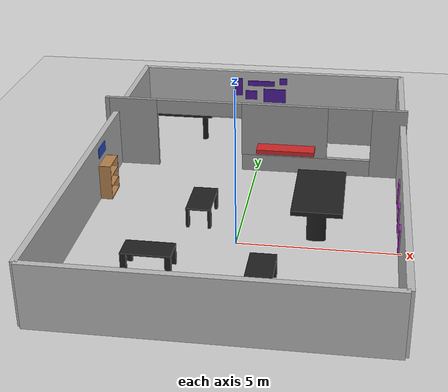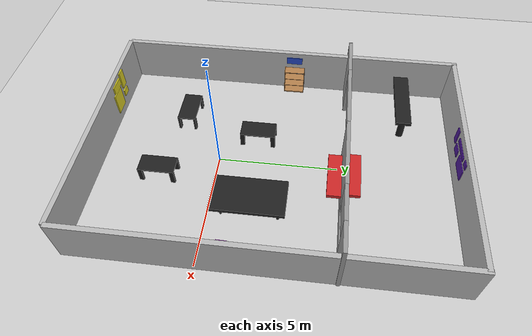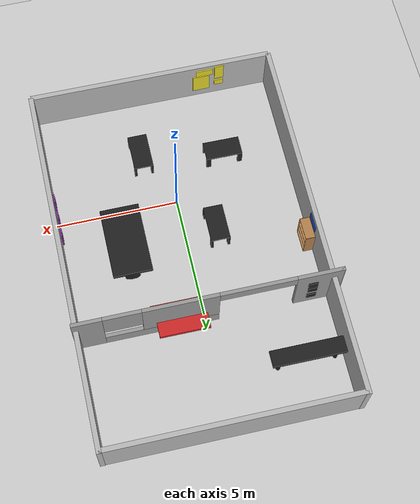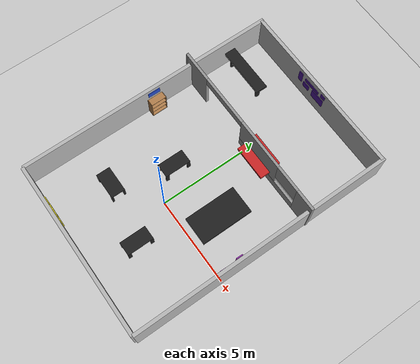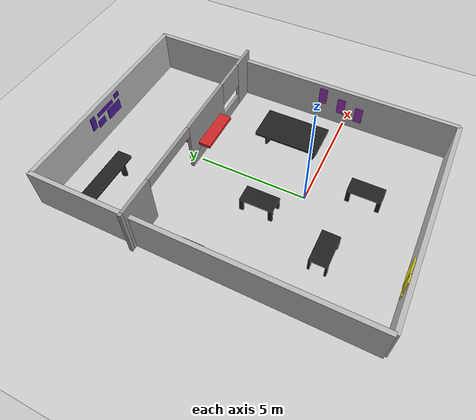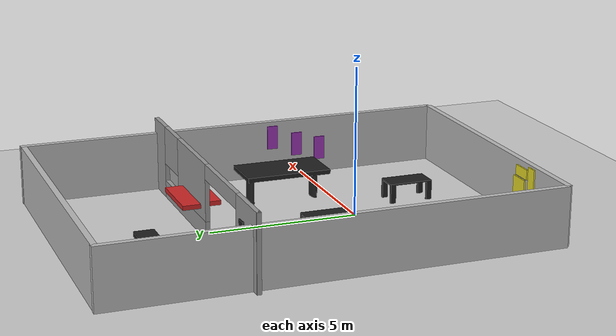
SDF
<sdf version="1.6">
 <world name="default">
  <physics name="default_physics" default="0" type="ode">
   <ode>
    <solver>
     <type>quick</type>
     <iters>20</iters>
     <sor>1</sor>
     <use_dynamic_moi_rescaling>0</use_dynamic_moi_rescaling>
    </solver>
    <constraints>
     <cfm>0</cfm>
     <erp>0.2</erp>
     <contact_max_correcting_vel>100</contact_max_correcting_vel>
     <contact_surface_layer>0</contact_surface_layer>
    </constraints>
   </ode>
   <real_time_update_rate>1000</real_time_update_rate>
   <max_step_size>0.001</max_step_size>
   <real_time_factor>1</real_time_factor>
  </physics>
  <light name="sun" type="directional">
   <pose>0 0 10 0 -0 0</pose>
   <diffuse>0.8 0.8 0.8 1</diffuse>
   <specular>0.1 0.1 0.1 1</specular>
   <attenuation>
    <range>1000</range>
    <constant>0.9</constant>
    <linear>0.01</linear>
    <quadratic>0.001</quadratic>
   </attenuation>
   <direction>-0.5 0.5 -1</direction>
  </light>
  <model name="ground_plane">
   <static>1</static>
   <link name="link">
    <collision name="collision">
     <geometry><plane><normal>0 0 1</normal><size>100 100</size></plane></geometry>
     <surface><friction><ode><mu>100</mu><mu2>50</mu2></ode></friction></surface>
    </collision>
    <visual name="visual">
     <cast_shadows>0</cast_shadows>
     <geometry><plane><normal>0 0 1</normal><size>100 100</size></plane></geometry>
     <material>
      <script><uri>file://media/materials/scripts/gazebo.material</uri><name>Gazebo/Grey</name></script>
     </material>
    </visual>
   </link>
  </model>
  <model name="wall_1_model">
   <pose>0 -5 1 0 -0 0</pose>
   <static>1</static>
   <link name="wall_1_body">
    <inertial>
     <mass>1</mass>
     <inertia><ixx>1</ixx><ixy>0</ixy><ixz>0</ixz><iyy>1</iyy><iyz>0</iyz><izz>1</izz></inertia>
    </inertial>
    <collision name="collision"><geometry><box><size>10 0.2 2</size></box></geometry></collision>
    <visual name="visual"><geometry><box><size>10 0.2 2</size></box></geometry></visual>
   </link>
  </model>
  <model name="wall_2_model">
   <pose>0 9.887 1 0 -0 0</pose>
   <static>1</static>
   <link name="wall_2_body">
    <inertial>
     <mass>1</mass>
     <inertia><ixx>1</ixx><ixy>0</ixy><ixz>0</ixz><iyy>1</iyy><iyz>0</iyz><izz>1</izz></inertia>
    </inertial>
    <collision name="collision"><geometry><box><size>10 0.2 2</size></box></geometry></collision>
    <visual name="visual"><geometry><box><size>10 0.2 2</size></box></geometry></visual>
   </link>
  </model>
  <model name="wall_3_model">
   <pose>-5 2.5 1 0 -0 0</pose>
   <static>1</static>
   <link name="wall_3_body">
    <inertial>
     <mass>1</mass>
     <inertia><ixx>1</ixx><ixy>0</ixy><ixz>0</ixz><iyy>1</iyy><iyz>0</iyz><izz>1</izz></inertia>
    </inertial>
    <collision name="collision"><geometry><box><size>0.2 15 2</size></box></geometry></collision>
    <visual name="visual"><geometry><box><size>0.2 15 2</size></box></geometry></visual>
   </link>
  </model>
  <model name="wall_4_model">
   <pose>5 2.5 1 0 -0 0</pose>
   <static>1</static>
   <link name="wall_4_body">
    <inertial>
     <mass>1</mass>
     <inertia><ixx>1</ixx><ixy>0</ixy><ixz>0</ixz><iyy>1</iyy><iyz>0</iyz><izz>1</izz></inertia>
    </inertial>
    <collision name="collision"><geometry><box><size>0.2 15 2</size></box></geometry></collision>
    <visual name="visual"><geometry><box><size>0.2 15 2</size></box></geometry></visual>
   </link>
  </model>
  <model name="kitchen_table">
   <static>1</static>
   <link name="link">
    <collision name="colision1">
     <geometry>
      <mesh><uri>model://kitchen_table/meshes/kitchen_table1.stl</uri><scale>1 1 1</scale></mesh>
     </geometry>
    </collision>
    <visual name="visual1">
     <geometry>
      <mesh><uri>model://kitchen_table/meshes/kitchen_table1.stl</uri><scale>1 1 1</scale></mesh>
     </geometry>
     <material>
      <script><uri>file://media/materials/scripts/gazebo.material</uri><name>Gazebo/FlatBlack</name></script>
     </material>
    </visual>
    <velocity_decay><linear>0</linear><angular>0</angular></velocity_decay>
   </link>
   <pose>0.620276 -3.08231 0 0 -0 0</pose>
  </model>
  <light name="male03light" type="point">
   <pose>3.6 0.53 1.6 0 -0 0</pose>
   <diffuse>0.5 0.5 0.5 1</diffuse>
   <specular>0.1 0.1 0.1 1</specular>
   <attenuation>
    <range>1</range>
    <linear>0.01</linear>
    <constant>0.3</constant>
    <quadratic>0</quadratic>
   </attenuation>
   <direction>0 0 -1</direction>
   <spot><inner_angle>0.6</inner_angle><outer_angle>0.8</outer_angle><falloff>1.2</falloff></spot>
   <cast_shadows>0</cast_shadows>
  </light>
  <light name="male03bislight" type="point">
   <pose>-2.9 3.7 1.5 0 -0 0</pose>
   <diffuse>0.5 0.5 0.5 1</diffuse>
   <specular>0.1 0.1 0.1 1</specular>
   <attenuation>
    <range>1</range>
    <linear>0.01</linear>
    <constant>0.3</constant>
    <quadratic>0</quadratic>
   </attenuation>
   <direction>0 0 -1</direction>
   <spot><inner_angle>0.6</inner_angle><outer_angle>0.8</outer_angle><falloff>1.2</falloff></spot>
   <cast_shadows>0</cast_shadows>
  </light>
  <gravity>0 0 -9.81</gravity>
  <magnetic_field>6e-06 2.3e-05 -4.2e-05</magnetic_field>
  <atmosphere type="adiabatic"/>
  <scene><ambient>0.4 0.4 0.4 1</ambient><background>0.7 0.7 0.7 1</background><shadows>1</shadows></scene>
  <spherical_coordinates>
   <surface_model>EARTH_WGS84</surface_model>
   <latitude_deg>0</latitude_deg>
   <longitude_deg>0</longitude_deg>
   <elevation>0</elevation>
   <heading_deg>0</heading_deg>
  </spherical_coordinates>
  <model name="kitchen_table_clone">
   <static>1</static>
   <link name="link">
    <collision name="colision1">
     <geometry>
      <mesh><uri>model://kitchen_table/meshes/kitchen_table1.stl</uri><scale>1 1 1</scale></mesh>
     </geometry>
    </collision>
    <visual name="visual1">
     <geometry>
      <mesh><uri>model://kitchen_table/meshes/kitchen_table1.stl</uri><scale>1 1 1</scale></mesh>
     </geometry>
     <material>
      <script><uri>file://media/materials/scripts/gazebo.material</uri><name>Gazebo/FlatBlack</name></script>
     </material>
    </visual>
    <velocity_decay><linear>0</linear><angular>0</angular></velocity_decay>
   </link>
   <pose>-3.07863 -1.32172 0 0 0 -1.57616</pose>
  </model>
  <model name="bookshelf">
   <static>1</static>
   <link name="link">
    <inertial><mass>1</mass></inertial>
    <collision name="back">
     <pose>0 0.005 0.6 0 -0 0</pose>
     <geometry><box><size>0.9 0.01 1.2</size></box></geometry>
    </collision>
    <visual name="visual1">
     <pose>0 0.005 0.6 0 -0 0</pose>
     <geometry><box><size>0.9 0.01 1.2</size></box></geometry>
     <material>
      <script><uri>file://media/materials/scripts/gazebo.material</uri><name>Gazebo/Wood</name></script>
     </material>
    </visual>
    <collision name="left_side">
     <pose>0.45 -0.195 0.6 0 -0 0</pose>
     <geometry><box><size>0.02 0.4 1.2</size></box></geometry>
    </collision>
    <visual name="visual2">
     <pose>0.45 -0.195 0.6 0 -0 0</pose>
     <geometry><box><size>0.02 0.4 1.2</size></box></geometry>
     <material>
      <script><uri>file://media/materials/scripts/gazebo.material</uri><name>Gazebo/Wood</name></script>
     </material>
    </visual>
    <collision name="right_side">
     <pose>-0.45 -0.195 0.6 0 -0 0</pose>
     <geometry><box><size>0.02 0.4 1.2</size></box></geometry>
    </collision>
    <visual name="visual3">
     <pose>-0.45 -0.195 0.6 0 -0 0</pose>
     <geometry><box><size>0.02 0.4 1.2</size></box></geometry>
     <material>
      <script><uri>file://media/materials/scripts/gazebo.material</uri><name>Gazebo/Wood</name></script>
     </material>
    </visual>
    <collision name="bottom">
     <pose>0 -0.195 0.03 0 -0 0</pose>
     <geometry><box><size>0.88 0.4 0.06</size></box></geometry>
    </collision>
    <visual name="visual4">
     <pose>0 -0.195 0.03 0 -0 0</pose>
     <geometry><box><size>0.88 0.4 0.06</size></box></geometry>
     <material>
      <script><uri>file://media/materials/scripts/gazebo.material</uri><name>Gazebo/Wood</name></script>
     </material>
    </visual>
    <collision name="top">
     <pose>0 -0.195 1.19 0 -0 0</pose>
     <geometry><box><size>0.88 0.4 0.02</size></box></geometry>
    </collision>
    <visual name="visual5">
     <pose>0 -0.195 1.19 0 -0 0</pose>
     <geometry><box><size>0.88 0.4 0.02</size></box></geometry>
     <material>
      <script><uri>file://media/materials/scripts/gazebo.material</uri><name>Gazebo/Wood</name></script>
     </material>
    </visual>
    <collision name="low_shelf">
     <pose>0 -0.195 0.43 0 -0 0</pose>
     <geometry><box><size>0.88 0.4 0.02</size></box></geometry>
    </collision>
    <visual name="visual6">
     <pose>0 -0.195 0.43 0 -0 0</pose>
     <geometry><box><size>0.88 0.4 0.02</size></box></geometry>
     <material>
      <script><uri>file://media/materials/scripts/gazebo.material</uri><name>Gazebo/Wood</name></script>
     </material>
    </visual>
    <collision name="high_shelf">
     <pose>0 -0.195 0.8 0 -0 0</pose>
     <geometry><box><size>0.88 0.4 0.02</size></box></geometry>
    </collision>
    <visual name="visual7">
     <pose>0 -0.195 0.8 0 -0 0</pose>
     <geometry><box><size>0.88 0.4 0.02</size></box></geometry>
     <material>
      <script><uri>file://media/materials/scripts/gazebo.material</uri><name>Gazebo/Wood</name></script>
     </material>
    </visual>
   </link>
   <pose>-4.89969 2.77386 0 0 -0 1.57996</pose>
  </model>
  <model name="varying_doors3">
   <pose>-0.119641 5.23144 0 0 -0 0</pose>
   <link name="Wall_7">
    <pose>0.01315 0 0 0 -0 3.14159</pose>
    <visual name="Wall_7_Visual_0">
     <pose>-4.65399 0 1.25 0 -0 0</pose>
     <geometry><box><size>1.19202 0.15 2.5</size></box></geometry>
     <material>
      <script><uri>file://media/materials/scripts/gazebo.material</uri><name>Gazebo/Grey</name></script>
      <ambient>1 1 1 1</ambient>
     </material>
    </visual>
    <collision name="Wall_7_Collision_0">
     <geometry><box><size>1.19202 0.15 2.5</size></box></geometry>
     <pose>-4.65399 0 1.25 0 -0 0</pose>
    </collision>
    <visual name="Wall_7_Visual_1">
     <pose>4.33793 0 1.25 0 -0 0</pose>
     <geometry><box><size>1.82415 0.15 2.5</size></box></geometry>
     <material>
      <script><uri>file://media/materials/scripts/gazebo.material</uri><name>Gazebo/Grey</name></script>
      <ambient>1 1 1 1</ambient>
     </material>
    </visual>
    <collision name="Wall_7_Collision_1">
     <geometry><box><size>1.82415 0.15 2.5</size></box></geometry>
     <pose>4.33793 0 1.25 0 -0 0</pose>
    </collision>
    <visual name="Wall_7_Visual_2">
     <pose>-1.81606 0 0.3 0 -0 0</pose>
     <geometry><box><size>4.48383 0.15 0.6</size></box></geometry>
     <material>
      <script><uri>file://media/materials/scripts/gazebo.material</uri><name>Gazebo/Grey</name></script>
      <ambient>1 1 1 1</ambient>
     </material>
    </visual>
    <collision name="Wall_7_Collision_2">
     <geometry><box><size>4.48383 0.15 0.6</size></box></geometry>
     <pose>-1.81606 0 0.3 0 -0 0</pose>
    </collision>
    <visual name="Wall_7_Visual_3">
     <pose>-1.06606 0 1.55 0 -0 0</pose>
     <geometry><box><size>2.98383 0.15 1.9</size></box></geometry>
     <material>
      <script><uri>file://media/materials/scripts/gazebo.material</uri><name>Gazebo/Grey</name></script>
      <ambient>1 1 1 1</ambient>
     </material>
    </visual>
    <collision name="Wall_7_Collision_3">
     <geometry><box><size>2.98383 0.15 1.9</size></box></geometry>
     <pose>-1.06606 0 1.55 0 -0 0</pose>
    </collision>
    <visual name="Wall_7_Visual_4">
     <pose>-3.30798 0 1.85 0 -0 0</pose>
     <geometry><box><size>1.5 0.15 1.3</size></box></geometry>
     <material>
      <script><uri>file://media/materials/scripts/gazebo.material</uri><name>Gazebo/Grey</name></script>
      <ambient>1 1 1 1</ambient>
     </material>
    </visual>
    <collision name="Wall_7_Collision_4">
     <geometry><box><size>1.5 0.15 1.3</size></box></geometry>
     <pose>-3.30798 0 1.85 0 -0 0</pose>
    </collision>
    <visual name="Wall_7_Visual_5">
     <pose>1.92585 0 2.25 0 -0 0</pose>
     <geometry><box><size>3 0.15 0.5</size></box></geometry>
     <material>
      <script><uri>file://media/materials/scripts/gazebo.material</uri><name>Gazebo/Grey</name></script>
      <ambient>1 1 1 1</ambient>
     </material>
    </visual>
    <collision name="Wall_7_Collision_5">
     <geometry><box><size>3 0.15 0.5</size></box></geometry>
     <pose>1.92585 0 2.25 0 -0 0</pose>
    </collision>
   </link>
   <link name="Wall_8">
    <collision name="Wall_8_Collision">
     <geometry><box><size>0.15 0.15 2.5</size></box></geometry>
     <pose>0 0 1.25 0 -0 0</pose>
    </collision>
    <visual name="Wall_8_Visual">
     <pose>0 0 1.25 0 -0 0</pose>
     <geometry><box><size>0.15 0.15 2.5</size></box></geometry>
     <material>
      <script><uri>file://media/materials/scripts/gazebo.material</uri><name>Gazebo/Grey</name></script>
      <ambient>1 1 1 1</ambient>
     </material>
    </visual>
    <pose>-5.18815 0 0 0 -0 0</pose>
   </link>
   <static>1</static>
  </model>
  <model name="bar_wall">
   <static>1</static>
   <link name="link">
    <collision name="colision1">
     <geometry><mesh><uri>model://bar_wall/meshes/wall_bar.stl</uri><scale>1 1 1</scale></mesh></geometry>
    </collision>
    <visual name="visual1">
     <geometry><mesh><uri>model://bar_wall/meshes/wall_bar.stl</uri><scale>1 1 1</scale></mesh></geometry>
     <material>
      <script><uri>file://media/materials/scripts/gazebo.material</uri><name>Gazebo/Red</name></script>
     </material>
    </visual>
    <velocity_decay><linear>0</linear><angular>0</angular></velocity_decay>
   </link>
   <pose>-0.070744 5.91031 -0.071724 0 0 -1.57365</pose>
  </model>
  <model name="posters_yellow">
   <static>1</static>
   <link name="link">
    <collision name="colision1">
     <geometry><mesh><uri>model://posters_yellow/meshes/poster.stl</uri><scale>1 1 1</scale></mesh></geometry>
    </collision>
    <visual name="visual1">
     <geometry><mesh><uri>model://posters_yellow/meshes/poster.stl</uri><scale>1 1 1</scale></mesh></geometry>
     <material>
      <script><uri>file://media/materials/scripts/gazebo.material</uri><name>Gazebo/DarkYellow</name></script>
     </material>
    </visual>
    <velocity_decay><linear>0</linear><angular>0</angular></velocity_decay>
   </link>
   <pose>-3.24438 -4.84769 0.436971 0 -0 0</pose>
  </model>
  <model name="poster_black">
   <static>1</static>
   <link name="link">
    <collision name="colision1">
     <geometry><mesh><uri>model://poster_black/meshes/poster.stl</uri><scale>1 1 1</scale></mesh></geometry>
    </collision>
    <visual name="visual1">
     <geometry><mesh><uri>model://poster_black/meshes/poster.stl</uri><scale>1 1 1</scale></mesh></geometry>
     <material>
      <script><uri>file://media/materials/scripts/gazebo.material</uri><name>Gazebo/Black</name></script>
     </material>
    </visual>
    <velocity_decay><linear>0</linear><angular>0</angular></velocity_decay>
   </link>
   <pose>-4.53559 5.37919 1.22897 0 -0 0</pose>
  </model>
  <model name="poster_black_clone">
   <static>1</static>
   <link name="link">
    <collision name="colision1">
     <geometry><mesh><uri>model://poster_black/meshes/poster.stl</uri><scale>1 1 1</scale></mesh></geometry>
    </collision>
    <visual name="visual1">
     <geometry><mesh><uri>model://poster_black/meshes/poster.stl</uri><scale>1 1 1</scale></mesh></geometry>
     <material>
      <script><uri>file://media/materials/scripts/gazebo.material</uri><name>Gazebo/Black</name></script>
     </material>
    </visual>
    <velocity_decay><linear>0</linear><angular>0</angular></velocity_decay>
   </link>
   <pose>-4.56884 5.33881 0.664485 0 -0 0</pose>
  </model>
  <model name="poster_black_clone_0">
   <static>1</static>
   <link name="link">
    <collision name="colision1">
     <geometry><mesh><uri>model://poster_black/meshes/poster.stl</uri><scale>1 1 1</scale></mesh></geometry>
    </collision>
    <visual name="visual1">
     <geometry><mesh><uri>model://poster_black/meshes/poster.stl</uri><scale>1 1 1</scale></mesh></geometry>
     <material>
      <script><uri>file://media/materials/scripts/gazebo.material</uri><name>Gazebo/Black</name></script>
     </material>
    </visual>
    <velocity_decay><linear>0</linear><angular>0</angular></velocity_decay>
   </link>
   <pose>-4.56871 5.34664 0.104757 0 -0 0</pose>
  </model>
  <model name="bar_wall_clone">
   <static>1</static>
   <link name="link">
    <collision name="colision1">
     <geometry><mesh><uri>model://bar_wall/meshes/wall_bar.stl</uri><scale>1 1 1</scale></mesh></geometry>
    </collision>
    <visual name="visual1">
     <geometry><mesh><uri>model://bar_wall/meshes/wall_bar.stl</uri><scale>1 1 1</scale></mesh></geometry>
     <material>
      <script><uri>file://media/materials/scripts/gazebo.material</uri><name>Gazebo/Red</name></script>
     </material>
    </visual>
    <velocity_decay><linear>0</linear><angular>0</angular></velocity_decay>
   </link>
   <pose>0.039576 5.21124 -0.063017 0 0 -1.57365</pose>
  </model>
  <model name="poster_purple">
   <static>1</static>
   <link name="link">
    <collision name="colision1">
     <geometry><mesh><uri>model://poster_purple/meshes/poster.stl</uri><scale>1 1 1</scale></mesh></geometry>
    </collision>
    <visual name="visual1">
     <geometry><mesh><uri>model://poster_purple/meshes/poster.stl</uri><scale>1 1 1</scale></mesh></geometry>
     <material>
      <script><uri>file://media/materials/scripts/gazebo.material</uri><name>Gazebo/Purple</name></script>
     </material>
    </visual>
    <velocity_decay><linear>0</linear><angular>0</angular></velocity_decay>
   </link>
   <pose>4.86158 1.49742 0.956693 0 0 -1.59228</pose>
  </model>
  <model name="poster_purple_clone">
   <static>1</static>
   <link name="link">
    <collision name="colision1">
     <geometry><mesh><uri>model://poster_purple/meshes/poster.stl</uri><scale>1 1 1</scale></mesh></geometry>
    </collision>
    <visual name="visual1">
     <geometry><mesh><uri>model://poster_purple/meshes/poster.stl</uri><scale>1 1 1</scale></mesh></geometry>
     <material>
      <script><uri>file://media/materials/scripts/gazebo.material</uri><name>Gazebo/Purple</name></script>
     </material>
    </visual>
    <velocity_decay><linear>0</linear><angular>0</angular></velocity_decay>
   </link>
   <pose>4.87325 0.57958 0.637618 0 0 -1.59228</pose>
  </model>
  <model name="poster_purple_clone_0">
   <static>1</static>
   <link name="link">
    <collision name="colision1">
     <geometry><mesh><uri>model://poster_purple/meshes/poster.stl</uri><scale>1 1 1</scale></mesh></geometry>
    </collision>
    <visual name="visual1">
     <geometry><mesh><uri>model://poster_purple/meshes/poster.stl</uri><scale>1 1 1</scale></mesh></geometry>
     <material>
      <script><uri>file://media/materials/scripts/gazebo.material</uri><name>Gazebo/Purple</name></script>
     </material>
    </visual>
    <velocity_decay><linear>0</linear><angular>0</angular></velocity_decay>
   </link>
   <pose>4.89571 -0.288263 0.399814 0 0 -1.59228</pose>
  </model>
  <model name="poster_blue">
   <static>1</static>
   <link name="link">
    <collision name="colision1">
     <geometry><mesh><uri>model://poster_blue/meshes/poster.stl</uri><scale>1 1 1</scale></mesh></geometry>
    </collision>
    <visual name="visual1">
     <geometry><mesh><uri>model://poster_blue/meshes/poster.stl</uri><scale>1 1 1</scale></mesh></geometry>
     <material>
      <script><uri>file://media/materials/scripts/gazebo.material</uri><name>Gazebo/Blue</name></script>
     </material>
    </visual>
    <velocity_decay><linear>0</linear><angular>0</angular></velocity_decay>
   </link>
   <pose>-4.92329 2.39066 1.11141 0 -0 1.55455</pose>
  </model>
  <model name="posters_many">
   <static>1</static>
   <link name="link">
    <collision name="colision1">
     <geometry><mesh><uri>model://posters_many/meshes/poster.stl</uri><scale>1 1 1</scale></mesh></geometry>
    </collision>
    <visual name="visual1">
     <geometry><mesh><uri>model://posters_many/meshes/poster.stl</uri><scale>1 1 1</scale></mesh></geometry>
     <material>
      <script><uri>file://media/materials/scripts/gazebo.material</uri><name>Gazebo/Indigo</name></script>
     </material>
    </visual>
    <velocity_decay><linear>0</linear><angular>0</angular></velocity_decay>
   </link>
   <pose>-1.55698 9.79733 0.289408 0 -0 0</pose>
  </model>
  <model name="kitchen_table_clone_clone">
   <static>1</static>
   <link name="link">
    <collision name="colision1">
     <geometry>
      <mesh><uri>model://kitchen_table/meshes/kitchen_table1.stl</uri><scale>1 1 1</scale></mesh>
     </geometry>
    </collision>
    <visual name="visual1">
     <geometry>
      <mesh><uri>model://kitchen_table/meshes/kitchen_table1.stl</uri><scale>1 1 1</scale></mesh>
     </geometry>
     <material>
      <script><uri>file://media/materials/scripts/gazebo.material</uri><name>Gazebo/FlatBlack</name></script>
     </material>
    </visual>
    <velocity_decay><linear>0</linear><angular>0</angular></velocity_decay>
   </link>
   <pose>-1.72185 0.76775 0 0 -0 0</pose>
  </model>
  <model name="bar1">
   <static>1</static>
   <link name="link">
    <collision name="colision1">
     <geometry><mesh><uri>model://bar1/meshes/bar.stl</uri><scale>1 1 1</scale></mesh></geometry>
    </collision>
    <visual name="visual1">
     <geometry><mesh><uri>model://bar1/meshes/bar.stl</uri><scale>1 1 1</scale></mesh></geometry>
     <material>
      <script><uri>file://media/materials/scripts/gazebo.material</uri><name>Gazebo/FlatBlack</name></script>
     </material>
    </visual>
    <velocity_decay><linear>0</linear><angular>0</angular></velocity_decay>
   </link>
   <pose>-4.86799 8.05414 0 0 0 -1.5732</pose>
  </model>
  <model name="bar2">
   <static>1</static>
   <link name="link">
    <collision name="colision1">
     <geometry><mesh><uri>model://bar2/meshes/bar.stl</uri><scale>1 1 1</scale></mesh></geometry>
    </collision>
    <visual name="visual1">
     <geometry><mesh><uri>model://bar2/meshes/bar.stl</uri><scale>1 1 1</scale></mesh></geometry>
     <material>
      <script><uri>file://media/materials/scripts/gazebo.material</uri><name>Gazebo/FlatBlack</name></script>
     </material>
    </visual>
    <velocity_decay><linear>0</linear><angular>0</angular></velocity_decay>
   </link>
   <pose>1.62683 0.225043 0 0 -0 0</pose>
  </model>
 </world>
</sdf>
